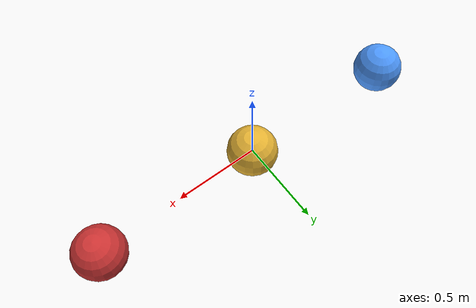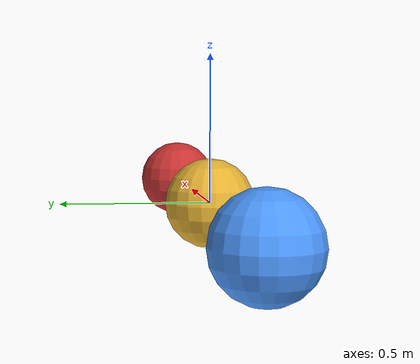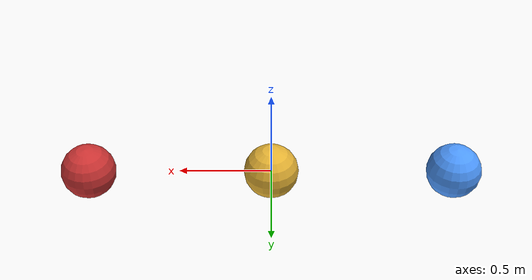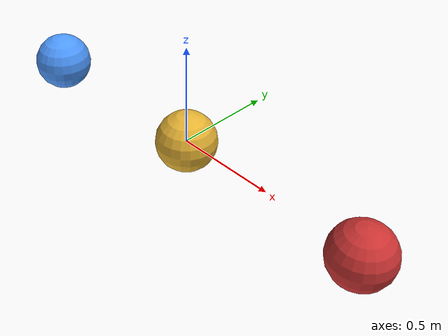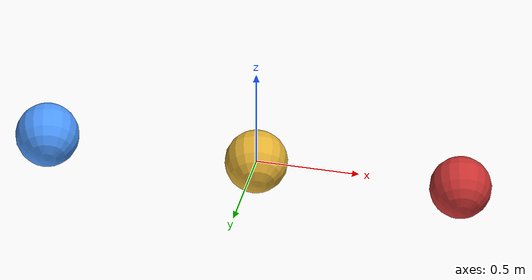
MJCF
<mujoco model="fluid-drag">
  <option gravity="0 0 -9.81" timestep="0.002"
          density="500" viscosity="0.5"/>
  <worldbody>
    <body name="light" pos="-1 0 0">
      <freejoint name="light_free"/>
      <geom name="light_geom" type="sphere" size="0.15" mass="0.5"
            rgba="0.3 0.6 1.0 1"/>
    </body>
    <body name="medium" pos="0 0 0">
      <freejoint name="medium_free"/>
      <geom name="medium_geom" type="sphere" size="0.15" mass="2.0"
            rgba="0.9 0.7 0.2 1"/>
    </body>
    <body name="heavy" pos="1 0 0">
      <freejoint name="heavy_free"/>
      <geom name="heavy_geom" type="sphere" size="0.15" mass="8.0"
            rgba="0.8 0.2 0.2 1"/>
    </body>
  </worldbody>
</mujoco>
